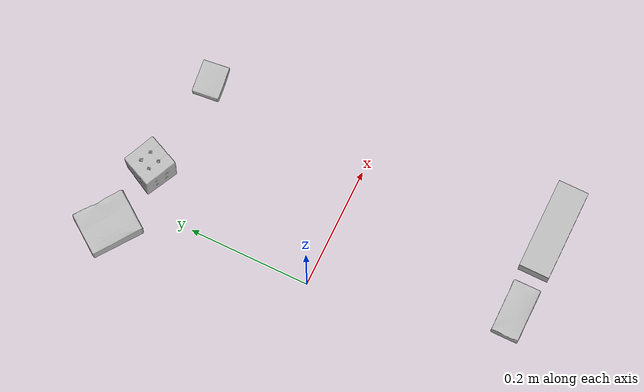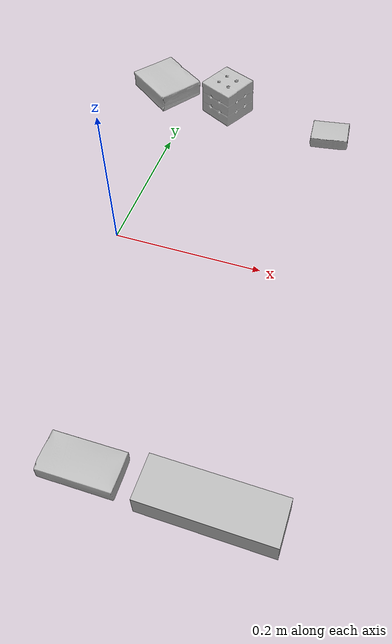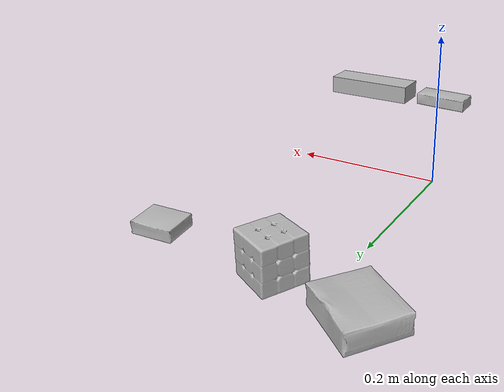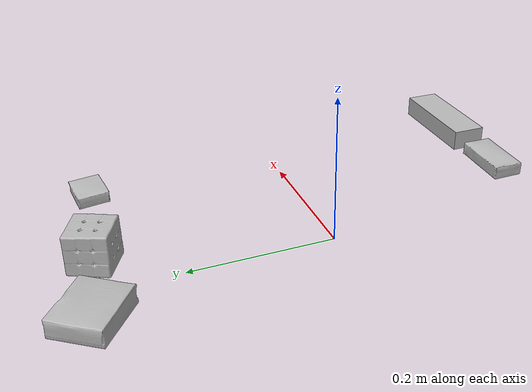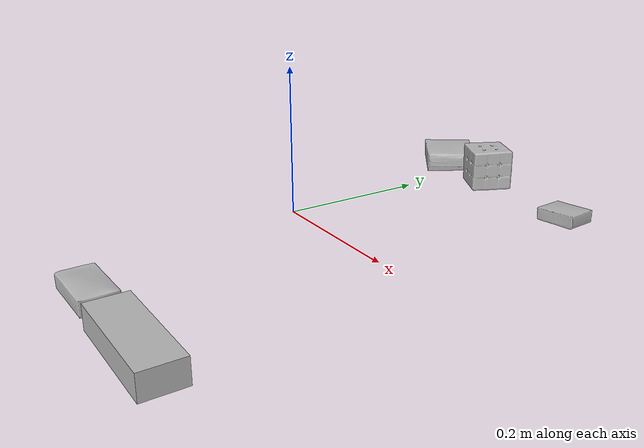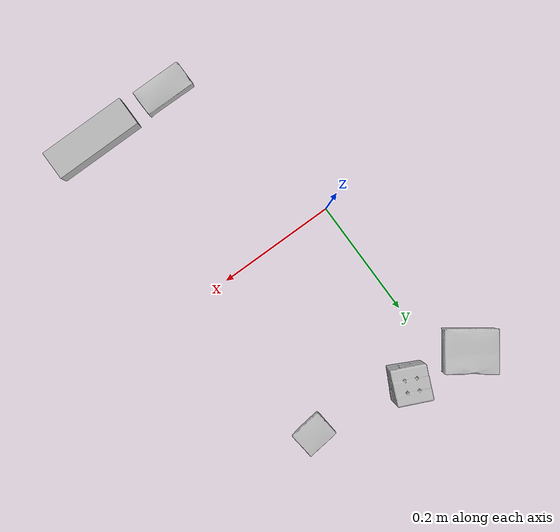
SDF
<?xml version="1.0" ?>
<sdf version="1.4">
  <world name="default">
    <light name="light1" type="point">
      <pose>0 0 1 0 0 0</pose>
      <diffuse>3 3 3 1</diffuse>
      <specular>3 3 3 1</specular>
    </light>
    <light name="light2" type="point">
      <pose>0 0.5 2 0 0 0</pose>
      <diffuse>1 1 1 1</diffuse>
      <specular>1 1 1 1</specular>
    </light>
    <light name="light3" type="point">
      <pose>0 0.5 2 0 0 0</pose>
      <diffuse>3 3 3 1</diffuse>
      <specular>3 3 3 1</specular>
    </light>
    <scene>
      <ambient>0.7 0.7 0.7</ambient>
    </scene>
    <model name="box1">
      <link name="link_box1">
        <collision name="default">
          <geometry>
            <mesh>
              <uri>model://jenga/collision_meshes/collision.obj</uri>
              <scale>1.0 1.0 1.0</scale>
            </mesh>
          </geometry>
          <surface>
            <friction>
              <ode>
                <mu>0.5</mu>
                <mu2>0.5</mu2>
              </ode>
            </friction>
          </surface>
        </collision>
        <visual name="default">
          <geometry>
            <mesh>
              <uri>model://jenga/visual_meshes/visual.dae</uri>
              <scale>1.0 1.0 1.0</scale>
            </mesh>
          </geometry>
        </visual>
        <inertial>
          <mass>0.28879067301750183</mass>
          <pose>-2.502855807051674e-07 -0.00010250010382151231 -4.0923401684267446e-05 0.0 -7.342154049184251e-07 0.0</pose>
          <inertia>
            <ixx>7.991539e-05</ixx>
            <iyy>0.00054150453</iyy>
            <izz>0.00057810213</izz>
            <ixy>0</ixy>
            <ixz>0</ixz>
            <iyz>0</iyz>
          </inertia>
        </inertial>
      </link>
      <pose>0.24000045657157898 -0.3098974823951721 0.014999995008111 1.4018826858752618e-08 1.3301942084645618e-09 -1.9455305276983348e-07</pose>
    </model>
    <model name="box2">
      <link name="link_box2">
        <collision name="default">
          <geometry>
            <mesh>
              <uri>model://sugar_box/collision_meshes/collision.obj</uri>
              <scale>0.5 0.5 0.5</scale>
            </mesh>
          </geometry>
          <surface>
            <friction>
              <ode>
                <mu>0.5</mu>
                <mu2>0.5</mu2>
              </ode>
            </friction>
          </surface>
        </collision>
        <visual name="default">
          <geometry>
            <mesh>
              <uri>model://sugar_box/visual_meshes/visual.dae</uri>
              <scale>0.5 0.5 0.5</scale>
            </mesh>
          </geometry>
        </visual>
        <inertial>
          <mass>0.10389333218336105</mass>
          <pose>0.000517186417710036 1.9245549992774613e-05 -0.00018182402709499002 -0.00040462615469338603 0.0010506637547558321 0.0026153785561208315</pose>
          <inertia>
            <ixx>2.1640906e-05</ixx>
            <iyy>6.994788e-05</iyy>
            <izz>8.373595e-05</izz>
            <ixy>0</ixy>
            <ixz>0</ixz>
            <iyz>0</iyz>
          </inertia>
        </inertial>
      </link>
      <pose>0.09952272474765778 -0.3101334869861603 0.011399304494261742 0.0007749654448859101 -0.023433180439314458 0.00023495288224547982</pose>
    </model>
    <model name="box3">
      <link name="link_box3">
        <collision name="default">
          <geometry>
            <mesh>
              <uri>model://rubiks_cube/collision_meshes/collision.obj</uri>
              <scale>1.0 1.0 1.0</scale>
            </mesh>
          </geometry>
          <surface>
            <friction>
              <ode>
                <mu>0.5</mu>
                <mu2>0.5</mu2>
              </ode>
            </friction>
          </surface>
        </collision>
        <visual name="default">
          <geometry>
            <mesh>
              <uri>model://rubiks_cube/visual_meshes/visual.dae</uri>
              <scale>1.0 1.0 1.0</scale>
            </mesh>
          </geometry>
        </visual>
        <inertial>
          <mass>0.21973572671413422</mass>
          <pose>2.6721041649580002e-05 5.256966323941015e-05 -7.264316082000732e-06 -0.054673783840129137 -0.09814154164948871 -0.03445565380518822</pose>
          <inertia>
            <ixx>0.00012141874</ixx>
            <iyy>0.000120852514</iyy>
            <izz>0.00012242487</izz>
            <ixy>0</ixy>
            <ixz>0</ixz>
            <iyz>0</iyz>
          </inertia>
        </inertial>
      </link>
      <pose>0.06017695367336273 0.2998414635658264 0.02867899462580681 -2.494186317116704e-08 -1.839674279479422e-08 1.1327568033830027</pose>
    </model>
    <model name="box4">
      <link name="link_box4">
        <collision name="default">
          <geometry>
            <mesh>
              <uri>model://pudding_box/collision_meshes/collision.obj</uri>
              <scale>0.5 0.5 0.5</scale>
            </mesh>
          </geometry>
          <surface>
            <friction>
              <ode>
                <mu>0.5</mu>
                <mu2>0.5</mu2>
              </ode>
            </friction>
          </surface>
        </collision>
        <visual name="default">
          <geometry>
            <mesh>
              <uri>model://pudding_box/visual_meshes/visual.dae</uri>
              <scale>0.5 0.5 0.5</scale>
            </mesh>
          </geometry>
        </visual>
        <inertial>
          <mass>0.0391676165163517</mass>
          <pose>0.00024474109522998333 0.00040339428232982755 -0.0002594413817860186 0.005213101313254789 -0.0066037982630024914 0.020079830751203582</pose>
          <inertia>
            <ixx>1.1069244e-05</ixx>
            <iyy>7.447467e-06</iyy>
            <izz>1.634663e-05</izz>
            <ixy>0</ixy>
            <ixz>0</ixz>
            <iyz>0</iyz>
          </inertia>
        </inertial>
      </link>
      <pose>0.22969332337379456 0.2802444100379944 0.009862900711596012 0.022348654038008873 -0.011391619070848943 -1.4663266887608</pose>
    </model>
    <model name="box5">
      <link name="link_box5">
        <collision name="default">
          <geometry>
            <mesh>
              <uri>model://gelatin_box/collision_meshes/collision.obj</uri>
              <scale>1.0 1.0 1.0</scale>
            </mesh>
          </geometry>
          <surface>
            <friction>
              <ode>
                <mu>0.5</mu>
                <mu2>0.5</mu2>
              </ode>
            </friction>
          </surface>
        </collision>
        <visual name="default">
          <geometry>
            <mesh>
              <uri>model://gelatin_box/visual_meshes/visual.dae</uri>
              <scale>1.0 1.0 1.0</scale>
            </mesh>
          </geometry>
        </visual>
        <inertial>
          <mass>0.24157556891441345</mass>
          <pose>0.0004319618456065655 0.00011156872642459348 -0.0003640321083366871 -0.0010503718658393805 -0.0047558177571565665 0.016440565059328244</pose>
          <inertia>
            <ixx>0.00017053263</ixx>
            <iyy>0.00012181056</iyy>
            <izz>0.00025958868</izz>
            <ixy>0</ixy>
            <ixz>0</ixz>
            <iyz>0</iyz>
          </inertia>
        </inertial>
      </link>
      <pose>-0.04996103048324585 0.31986889243125916 0.015168310143053532 0.005597473365354644 -0.0073045828161724695 0.9337831352200352</pose>
    </model>
  </world>
</sdf>
